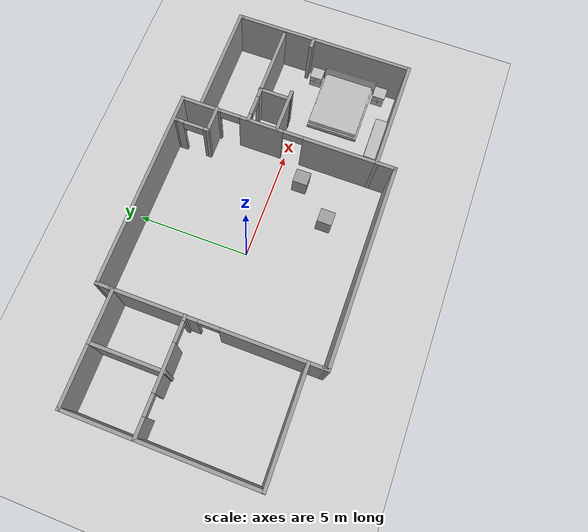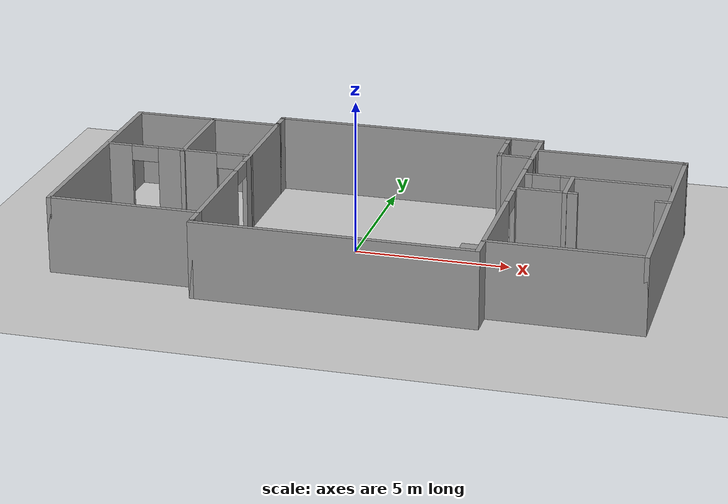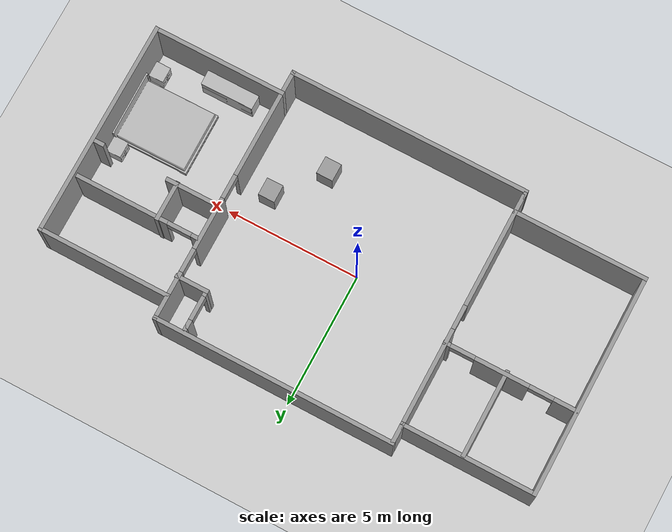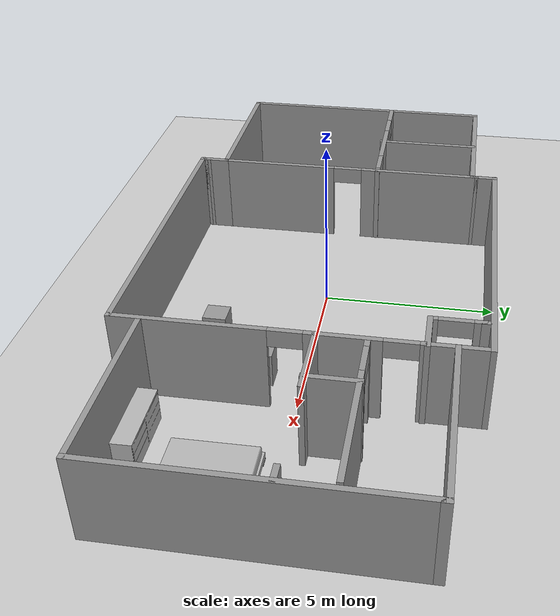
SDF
<sdf version="1.6">
 <world name="default">
  <model name="ground_plane">
   <static>1</static>
   <link name="link">
    <collision name="collision">
     <geometry><plane><normal>0 0 1</normal><size>100 100</size></plane></geometry>
     <surface><friction><ode><mu>100</mu><mu2>50</mu2></ode></friction></surface>
    </collision>
    <visual name="visual">
     <cast_shadows>0</cast_shadows>
     <geometry><plane><normal>0 0 1</normal><size>100 100</size></plane></geometry>
     <material>
      <script><uri>file://media/materials/scripts/gazebo.material</uri><name>Gazebo/Grey</name></script>
     </material>
    </visual>
   </link>
  </model>
  <model name="house1">
   <pose>0.56665 0.024859 0 0 -0 0</pose>
   <link name="Wall_10">
    <collision name="Wall_10_Collision">
     <geometry><box><size>8.25 0.15 2.5</size></box></geometry>
     <pose>0 0 1.25 0 -0 0</pose>
    </collision>
    <visual name="Wall_10_Visual">
     <pose>0 0 1.25 0 -0 0</pose>
     <geometry><box><size>8.25 0.15 2.5</size></box></geometry>
     <material>
      <script><uri>file://media/materials/scripts/gazebo.material</uri><name>Gazebo/Grey</name></script>
      <ambient>1 1 1 1</ambient>
     </material>
     <meta><layer>0</layer></meta>
    </visual>
    <pose>-9.275 0.05 0 0 0 -1.5708</pose>
   </link>
   <link name="Wall_11">
    <collision name="Wall_11_Collision">
     <geometry><box><size>5 0.15 2.5</size></box></geometry>
     <pose>0 0 1.25 0 -0 0</pose>
    </collision>
    <visual name="Wall_11_Visual">
     <pose>0 0 1.25 0 -0 0</pose>
     <geometry><box><size>5 0.15 2.5</size></box></geometry>
     <material>
      <script><uri>file://media/materials/scripts/gazebo.material</uri><name>Gazebo/Grey</name></script>
      <ambient>1 1 1 1</ambient>
     </material>
     <meta><layer>0</layer></meta>
    </visual>
    <pose>-6.85 -4 0 0 -0 0</pose>
   </link>
   <link name="Wall_12">
    <collision name="Wall_12_Collision">
     <geometry><box><size>0.75 0.15 2.5</size></box></geometry>
     <pose>0 0 1.25 0 -0 0</pose>
    </collision>
    <visual name="Wall_12_Visual">
     <pose>0 0 1.25 0 -0 0</pose>
     <geometry><box><size>0.75 0.15 2.5</size></box></geometry>
     <material>
      <script><uri>file://media/materials/scripts/gazebo.material</uri><name>Gazebo/Grey</name></script>
      <ambient>1 1 1 1</ambient>
     </material>
     <meta><layer>0</layer></meta>
    </visual>
    <pose>-4.425 -4.3 0 0 0 -1.5708</pose>
   </link>
   <link name="Wall_13">
    <collision name="Wall_13_Collision">
     <geometry><box><size>0.25 0.15 2.5</size></box></geometry>
     <pose>0 0 1.25 0 -0 0</pose>
    </collision>
    <visual name="Wall_13_Visual">
     <pose>0 0 1.25 0 -0 0</pose>
     <geometry><box><size>0.25 0.15 2.5</size></box></geometry>
     <material>
      <script><uri>file://media/materials/scripts/gazebo.material</uri><name>Gazebo/Grey</name></script>
      <ambient>1 1 1 1</ambient>
     </material>
     <meta><layer>0</layer></meta>
    </visual>
    <pose>-4.425 -4.65 0 0 0 -1.5708</pose>
   </link>
   <link name="Wall_14">
    <collision name="Wall_14_Collision">
     <geometry><box><size>0.25 0.15 2.5</size></box></geometry>
     <pose>0 0 1.25 0 -0 0</pose>
    </collision>
    <visual name="Wall_14_Visual">
     <pose>0 0 1.25 0 -0 0</pose>
     <geometry><box><size>0.25 0.15 2.5</size></box></geometry>
     <material>
      <script><uri>file://media/materials/scripts/gazebo.material</uri><name>Gazebo/Grey</name></script>
      <ambient>1 1 1 1</ambient>
     </material>
     <meta><layer>0</layer></meta>
    </visual>
    <pose>-4.425 -4.75 0 0 0 -1.5708</pose>
   </link>
   <link name="Wall_15">
    <collision name="Wall_15_Collision">
     <geometry><box><size>9 0.15 2.5</size></box></geometry>
     <pose>0 0 1.25 0 -0 0</pose>
    </collision>
    <visual name="Wall_15_Visual">
     <pose>0 0 1.25 0 -0 0</pose>
     <geometry><box><size>9 0.15 2.5</size></box></geometry>
     <material>
      <script><uri>file://media/materials/scripts/gazebo.material</uri><name>Gazebo/Grey</name></script>
      <ambient>1 1 1 1</ambient>
     </material>
     <meta><layer>0</layer></meta>
    </visual>
    <pose>0 -4.8 0 0 -0 0</pose>
   </link>
   <link name="Wall_16">
    <pose>4.425 0 0 0 -0 1.5708</pose>
    <visual name="Wall_16_Visual_0">
     <pose>-2.80205 0 1.25 0 -0 0</pose>
     <geometry><box><size>4.14589 0.15 2.5</size></box></geometry>
     <material>
      <script><uri>file://media/materials/scripts/gazebo.material</uri><name>Gazebo/Grey</name></script>
      <ambient>1 1 1 1</ambient>
     </material>
     <meta><layer>0</layer></meta>
    </visual>
    <collision name="Wall_16_Collision_0">
     <geometry><box><size>4.14589 0.15 2.5</size></box></geometry>
     <pose>-2.80205 0 1.25 0 -0 0</pose>
    </collision>
    <visual name="Wall_16_Visual_1">
     <pose>1.15731 0 1.25 0 -0 0</pose>
     <geometry><box><size>1.97282 0.15 2.5</size></box></geometry>
     <material>
      <script><uri>file://media/materials/scripts/gazebo.material</uri><name>Gazebo/Grey</name></script>
      <ambient>1 1 1 1</ambient>
     </material>
     <meta><layer>0</layer></meta>
    </visual>
    <collision name="Wall_16_Collision_1">
     <geometry><box><size>1.97282 0.15 2.5</size></box></geometry>
     <pose>1.15731 0 1.25 0 -0 0</pose>
    </collision>
    <visual name="Wall_16_Visual_2">
     <pose>3.95936 0 1.25 0 -0 0</pose>
     <geometry><box><size>1.83128 0.15 2.5</size></box></geometry>
     <material>
      <script><uri>file://media/materials/scripts/gazebo.material</uri><name>Gazebo/Grey</name></script>
      <ambient>1 1 1 1</ambient>
     </material>
     <meta><layer>0</layer></meta>
    </visual>
    <collision name="Wall_16_Collision_2">
     <geometry><box><size>1.83128 0.15 2.5</size></box></geometry>
     <pose>3.95936 0 1.25 0 -0 0</pose>
    </collision>
    <visual name="Wall_16_Visual_3">
     <pose>-0.279106 0 2.25 0 -0 0</pose>
     <geometry><box><size>0.9 0.15 0.5</size></box></geometry>
     <material>
      <script><uri>file://media/materials/scripts/gazebo.material</uri><name>Gazebo/Grey</name></script>
      <ambient>1 1 1 1</ambient>
     </material>
     <meta><layer>0</layer></meta>
    </visual>
    <collision name="Wall_16_Collision_3">
     <geometry><box><size>0.9 0.15 0.5</size></box></geometry>
     <pose>-0.279106 0 2.25 0 -0 0</pose>
    </collision>
    <visual name="Wall_16_Visual_4">
     <pose>2.59372 0 2.25 0 -0 0</pose>
     <geometry><box><size>0.9 0.15 0.5</size></box></geometry>
     <material>
      <script><uri>file://media/materials/scripts/gazebo.material</uri><name>Gazebo/Grey</name></script>
      <ambient>1 1 1 1</ambient>
     </material>
     <meta><layer>0</layer></meta>
    </visual>
    <collision name="Wall_16_Collision_4">
     <geometry><box><size>0.9 0.15 0.5</size></box></geometry>
     <pose>2.59372 0 2.25 0 -0 0</pose>
    </collision>
   </link>
   <link name="Wall_18">
    <collision name="Wall_18_Collision">
     <geometry><box><size>2 0.15 2.5</size></box></geometry>
     <pose>0 0 1.25 0 -0 0</pose>
    </collision>
    <visual name="Wall_18_Visual">
     <pose>0 0 1.25 0 -0 0</pose>
     <geometry><box><size>2 0.15 2.5</size></box></geometry>
     <material>
      <script><uri>file://media/materials/scripts/gazebo.material</uri><name>Gazebo/Grey</name></script>
      <ambient>1 1 1 1</ambient>
     </material>
     <meta><layer>0</layer></meta>
    </visual>
    <pose>5.42036 0.473012 0 0 -0 0</pose>
   </link>
   <link name="Wall_20">
    <collision name="Wall_20_Collision">
     <geometry><box><size>5 0.15 2.5</size></box></geometry>
     <pose>0 0 1.25 0 -0 0</pose>
    </collision>
    <visual name="Wall_20_Visual">
     <pose>0 0 1.25 0 -0 0</pose>
     <geometry><box><size>5 0.15 2.5</size></box></geometry>
     <material>
      <script><uri>file://media/materials/scripts/gazebo.material</uri><name>Gazebo/Grey</name></script>
      <ambient>1 1 1 1</ambient>
     </material>
     <meta><layer>0</layer></meta>
    </visual>
    <pose>6.85 -3.99469 0 0 -0 0</pose>
   </link>
   <link name="Wall_21">
    <collision name="Wall_21_Collision">
     <geometry><box><size>8 0.15 2.5</size></box></geometry>
     <pose>0 0 1.25 0 -0 0</pose>
    </collision>
    <visual name="Wall_21_Visual">
     <pose>0 0 1.25 0 -0 0</pose>
     <geometry><box><size>8 0.15 2.5</size></box></geometry>
     <material>
      <script><uri>file://media/materials/scripts/gazebo.material</uri><name>Gazebo/Grey</name></script>
      <ambient>1 1 1 1</ambient>
     </material>
     <meta><layer>0</layer></meta>
    </visual>
    <pose>9.275 -0.069691 0 0 -0 1.5708</pose>
   </link>
   <link name="Wall_22">
    <collision name="Wall_22_Collision">
     <geometry><box><size>0.25 0.15 2.5</size></box></geometry>
     <pose>0 0 1.25 0 -0 0</pose>
    </collision>
    <visual name="Wall_22_Visual">
     <pose>0 0 1.25 0 -0 0</pose>
     <geometry><box><size>0.25 0.15 2.5</size></box></geometry>
     <material>
      <script><uri>file://media/materials/scripts/gazebo.material</uri><name>Gazebo/Grey</name></script>
      <ambient>1 1 1 1</ambient>
     </material>
     <meta><layer>0</layer></meta>
    </visual>
    <pose>9.275 3.90531 0 0 -0 1.5708</pose>
   </link>
   <link name="Wall_23">
    <collision name="Wall_23_Collision">
     <geometry><box><size>5 0.15 2.5</size></box></geometry>
     <pose>0 0 1.25 0 -0 0</pose>
    </collision>
    <visual name="Wall_23_Visual">
     <pose>0 0 1.25 0 -0 0</pose>
     <geometry><box><size>5 0.15 2.5</size></box></geometry>
     <material>
      <script><uri>file://media/materials/scripts/gazebo.material</uri><name>Gazebo/Grey</name></script>
      <ambient>1 1 1 1</ambient>
     </material>
     <meta><layer>0</layer></meta>
    </visual>
    <pose>6.85 3.95531 0 0 -0 3.14159</pose>
   </link>
   <link name="Wall_25">
    <collision name="Wall_25_Collision">
     <geometry><box><size>1.25 0.15 2.5</size></box></geometry>
     <pose>0 0 1.25 0 -0 0</pose>
    </collision>
    <visual name="Wall_25_Visual">
     <pose>0 0 1.25 0 -0 0</pose>
     <geometry><box><size>1.25 0.15 2.5</size></box></geometry>
     <material>
      <script><uri>file://media/materials/scripts/gazebo.material</uri><name>Gazebo/Grey</name></script>
      <ambient>1 1 1 1</ambient>
     </material>
     <meta><layer>0</layer></meta>
    </visual>
    <pose>3.91018 3.21696 0 0 -0 3.14159</pose>
   </link>
   <link name="Wall_26">
    <pose>3.36018 3.89196 0 0 -0 1.5708</pose>
    <visual name="Wall_26_Visual_0">
     <pose>-0.614115 0 1.25 0 -0 0</pose>
     <geometry><box><size>0.271769 0.15 2.5</size></box></geometry>
     <material>
      <script><uri>file://media/materials/scripts/gazebo.material</uri><name>Gazebo/Grey</name></script>
      <ambient>1 1 1 1</ambient>
     </material>
     <meta><layer>0</layer></meta>
    </visual>
    <collision name="Wall_26_Collision_0">
     <geometry><box><size>0.271769 0.15 2.5</size></box></geometry>
     <pose>-0.614115 0 1.25 0 -0 0</pose>
    </collision>
    <visual name="Wall_26_Visual_1">
     <pose>0.585885 0 1.25 0 -0 0</pose>
     <geometry><box><size>0.328231 0.15 2.5</size></box></geometry>
     <material>
      <script><uri>file://media/materials/scripts/gazebo.material</uri><name>Gazebo/Grey</name></script>
      <ambient>1 1 1 1</ambient>
     </material>
     <meta><layer>0</layer></meta>
    </visual>
    <collision name="Wall_26_Collision_1">
     <geometry><box><size>0.328231 0.15 2.5</size></box></geometry>
     <pose>0.585885 0 1.25 0 -0 0</pose>
    </collision>
    <visual name="Wall_26_Visual_2">
     <pose>-0.028231 0 2.25 0 -0 0</pose>
     <geometry><box><size>0.9 0.15 0.5</size></box></geometry>
     <material>
      <script><uri>file://media/materials/scripts/gazebo.material</uri><name>Gazebo/Grey</name></script>
      <ambient>1 1 1 1</ambient>
     </material>
     <meta><layer>0</layer></meta>
    </visual>
    <collision name="Wall_26_Collision_2">
     <geometry><box><size>0.9 0.15 0.5</size></box></geometry>
     <pose>-0.028231 0 2.25 0 -0 0</pose>
    </collision>
   </link>
   <link name="Wall_27">
    <collision name="Wall_27_Collision">
     <geometry><box><size>0.25 0.15 2.5</size></box></geometry>
     <pose>0 0 1.25 0 -0 0</pose>
    </collision>
    <visual name="Wall_27_Visual">
     <pose>0 0 1.25 0 -0 0</pose>
     <geometry><box><size>0.25 0.15 2.5</size></box></geometry>
     <material>
      <script><uri>file://media/materials/scripts/gazebo.material</uri><name>Gazebo/Grey</name></script>
      <ambient>1 1 1 1</ambient>
     </material>
     <meta><layer>0</layer></meta>
    </visual>
    <pose>3.36018 4.61696 0 0 -0 1.5708</pose>
   </link>
   <link name="Wall_29">
    <pose>-4.425 0.05 0 0 0 -1.5708</pose>
    <visual name="Wall_29_Visual_0">
     <pose>-2.29321 0 1.25 0 -0 0</pose>
     <geometry><box><size>3.66357 0.15 2.5</size></box></geometry>
     <material>
      <script><uri>file://media/materials/scripts/gazebo.material</uri><name>Gazebo/Grey</name></script>
      <ambient>1 1 1 1</ambient>
     </material>
     <meta><layer>0</layer></meta>
    </visual>
    <collision name="Wall_29_Collision_0">
     <geometry><box><size>3.66357 0.15 2.5</size></box></geometry>
     <pose>-2.29321 0 1.25 0 -0 0</pose>
    </collision>
    <visual name="Wall_29_Visual_1">
     <pose>2.28179 0 1.25 0 -0 0</pose>
     <geometry><box><size>3.68643 0.15 2.5</size></box></geometry>
     <material>
      <script><uri>file://media/materials/scripts/gazebo.material</uri><name>Gazebo/Grey</name></script>
      <ambient>1 1 1 1</ambient>
     </material>
     <meta><layer>0</layer></meta>
    </visual>
    <collision name="Wall_29_Collision_1">
     <geometry><box><size>3.68643 0.15 2.5</size></box></geometry>
     <pose>2.28179 0 1.25 0 -0 0</pose>
    </collision>
    <visual name="Wall_29_Visual_2">
     <pose>-0.011427 0 2.25 0 -0 0</pose>
     <geometry><box><size>0.9 0.15 0.5</size></box></geometry>
     <material>
      <script><uri>file://media/materials/scripts/gazebo.material</uri><name>Gazebo/Grey</name></script>
      <ambient>1 1 1 1</ambient>
     </material>
     <meta><layer>0</layer></meta>
    </visual>
    <collision name="Wall_29_Collision_2">
     <geometry><box><size>0.9 0.15 0.5</size></box></geometry>
     <pose>-0.011427 0 2.25 0 -0 0</pose>
    </collision>
   </link>
   <link name="Wall_3">
    <collision name="Wall_3_Collision">
     <geometry><box><size>9 0.15 2.5</size></box></geometry>
     <pose>0 0 1.25 0 -0 0</pose>
    </collision>
    <visual name="Wall_3_Visual">
     <pose>0 0 1.25 0 -0 0</pose>
     <geometry><box><size>9 0.15 2.5</size></box></geometry>
     <material>
      <script><uri>file://media/materials/scripts/gazebo.material</uri><name>Gazebo/Grey</name></script>
      <ambient>1 1 1 1</ambient>
     </material>
     <meta><layer>0</layer></meta>
    </visual>
    <pose>0 4.8 0 0 -0 3.14159</pose>
   </link>
   <link name="Wall_31">
    <pose>-6.83454 1.03587 0 0 -0 0</pose>
    <visual name="Wall_31_Visual_0">
     <pose>-2.03932 0 1.25 0 -0 0</pose>
     <geometry><box><size>0.921362 0.15 2.5</size></box></geometry>
     <material>
      <script><uri>file://media/materials/scripts/gazebo.material</uri><name>Gazebo/Grey</name></script>
      <ambient>1 1 1 1</ambient>
     </material>
     <meta><layer>0</layer></meta>
    </visual>
    <collision name="Wall_31_Collision_0">
     <geometry><box><size>0.921362 0.15 2.5</size></box></geometry>
     <pose>-2.03932 0 1.25 0 -0 0</pose>
    </collision>
    <visual name="Wall_31_Visual_1">
     <pose>0.323037 0 1.25 0 -0 0</pose>
     <geometry><box><size>2.00335 0.15 2.5</size></box></geometry>
     <material>
      <script><uri>file://media/materials/scripts/gazebo.material</uri><name>Gazebo/Grey</name></script>
      <ambient>1 1 1 1</ambient>
     </material>
     <meta><layer>0</layer></meta>
    </visual>
    <collision name="Wall_31_Collision_1">
     <geometry><box><size>2.00335 0.15 2.5</size></box></geometry>
     <pose>0.323037 0 1.25 0 -0 0</pose>
    </collision>
    <visual name="Wall_31_Visual_2">
     <pose>2.36236 0 1.25 0 -0 0</pose>
     <geometry><box><size>0.275288 0.15 2.5</size></box></geometry>
     <material>
      <script><uri>file://media/materials/scripts/gazebo.material</uri><name>Gazebo/Grey</name></script>
      <ambient>1 1 1 1</ambient>
     </material>
     <meta><layer>0</layer></meta>
    </visual>
    <collision name="Wall_31_Collision_2">
     <geometry><box><size>0.275288 0.15 2.5</size></box></geometry>
     <pose>2.36236 0 1.25 0 -0 0</pose>
    </collision>
    <visual name="Wall_31_Visual_3">
     <pose>-1.12864 0 2.25 0 -0 0</pose>
     <geometry><box><size>0.9 0.15 0.5</size></box></geometry>
     <material>
      <script><uri>file://media/materials/scripts/gazebo.material</uri><name>Gazebo/Grey</name></script>
      <ambient>1 1 1 1</ambient>
     </material>
     <meta><layer>0</layer></meta>
    </visual>
    <collision name="Wall_31_Collision_3">
     <geometry><box><size>0.9 0.15 0.5</size></box></geometry>
     <pose>-1.12864 0 2.25 0 -0 0</pose>
    </collision>
    <visual name="Wall_31_Visual_4">
     <pose>1.77471 0 2.25 0 -0 0</pose>
     <geometry><box><size>0.9 0.15 0.5</size></box></geometry>
     <material>
      <script><uri>file://media/materials/scripts/gazebo.material</uri><name>Gazebo/Grey</name></script>
      <ambient>1 1 1 1</ambient>
     </material>
     <meta><layer>0</layer></meta>
    </visual>
    <collision name="Wall_31_Collision_4">
     <geometry><box><size>0.9 0.15 0.5</size></box></geometry>
     <pose>1.77471 0 2.25 0 -0 0</pose>
    </collision>
   </link>
   <link name="Wall_35">
    <collision name="Wall_35_Collision">
     <geometry><box><size>3.25 0.15 2.5</size></box></geometry>
     <pose>0 0 1.25 0 -0 0</pose>
    </collision>
    <visual name="Wall_35_Visual">
     <pose>0 0 1.25 0 -0 0</pose>
     <geometry><box><size>3.25 0.15 2.5</size></box></geometry>
     <material>
      <script><uri>file://media/materials/scripts/gazebo.material</uri><name>Gazebo/Grey</name></script>
      <ambient>1 1 1 1</ambient>
     </material>
     <meta><layer>0</layer></meta>
    </visual>
    <pose>-6.65631 2.51552 0 0 -0 1.5708</pose>
   </link>
   <link name="Wall_38">
    <collision name="Wall_38_Collision">
     <geometry><box><size>0.5 0.15 2.5</size></box></geometry>
     <pose>0 0 1.25 0 -0 0</pose>
    </collision>
    <visual name="Wall_38_Visual">
     <pose>0 0 1.25 0 -0 0</pose>
     <geometry><box><size>0.5 0.15 2.5</size></box></geometry>
     <material>
      <script><uri>file://media/materials/scripts/gazebo.material</uri><name>Gazebo/Grey</name></script>
      <ambient>1 1 1 1</ambient>
     </material>
     <meta><layer>0</layer></meta>
    </visual>
    <pose>9.06949 0.437834 0 0 -0 3.14159</pose>
   </link>
   <link name="Wall_40">
    <pose>6.76018 1.77463 0 0 -0 0</pose>
    <visual name="Wall_40_Visual_0">
     <pose>-2.19974 0 1.25 0 -0 0</pose>
     <geometry><box><size>0.350521 0.15 2.5</size></box></geometry>
     <material>
      <script><uri>file://media/materials/scripts/gazebo.material</uri><name>Gazebo/Grey</name></script>
      <ambient>1 1 1 1</ambient>
     </material>
     <meta><layer>0</layer></meta>
    </visual>
    <collision name="Wall_40_Collision_0">
     <geometry><box><size>0.350521 0.15 2.5</size></box></geometry>
     <pose>-2.19974 0 1.25 0 -0 0</pose>
    </collision>
    <visual name="Wall_40_Visual_1">
     <pose>0.625261 0 1.25 0 -0 0</pose>
     <geometry><box><size>3.49948 0.15 2.5</size></box></geometry>
     <material>
      <script><uri>file://media/materials/scripts/gazebo.material</uri><name>Gazebo/Grey</name></script>
      <ambient>1 1 1 1</ambient>
     </material>
     <meta><layer>0</layer></meta>
    </visual>
    <collision name="Wall_40_Collision_1">
     <geometry><box><size>3.49948 0.15 2.5</size></box></geometry>
     <pose>0.625261 0 1.25 0 -0 0</pose>
    </collision>
    <visual name="Wall_40_Visual_2">
     <pose>-1.57448 0 2.25 0 -0 0</pose>
     <geometry><box><size>0.9 0.15 0.5</size></box></geometry>
     <material>
      <script><uri>file://media/materials/scripts/gazebo.material</uri><name>Gazebo/Grey</name></script>
      <ambient>1 1 1 1</ambient>
     </material>
     <meta><layer>0</layer></meta>
    </visual>
    <collision name="Wall_40_Collision_2">
     <geometry><box><size>0.9 0.15 0.5</size></box></geometry>
     <pose>-1.57448 0 2.25 0 -0 0</pose>
    </collision>
   </link>
   <link name="Wall_50">
    <collision name="Wall_50_Collision">
     <geometry><box><size>1.5 0.15 2.5</size></box></geometry>
     <pose>0 0 1.25 0 -0 0</pose>
    </collision>
    <visual name="Wall_50_Visual">
     <pose>0 0 1.25 0 -0 0</pose>
     <geometry><box><size>1.5 0.15 2.5</size></box></geometry>
     <material>
      <script><uri>file://media/materials/scripts/gazebo.material</uri><name>Gazebo/Grey</name></script>
      <ambient>1 1 1 1</ambient>
     </material>
     <meta><layer>0</layer></meta>
    </visual>
    <pose>6.01545 1.12702 0 0 -0 1.5708</pose>
   </link>
   <link name="Wall_6">
    <collision name="Wall_6_Collision">
     <geometry><box><size>0.75 0.15 2.5</size></box></geometry>
     <pose>0 0 1.25 0 -0 0</pose>
    </collision>
    <visual name="Wall_6_Visual">
     <pose>0 0 1.25 0 -0 0</pose>
     <geometry><box><size>0.75 0.15 2.5</size></box></geometry>
     <material>
      <script><uri>file://media/materials/scripts/gazebo.material</uri><name>Gazebo/Grey</name></script>
      <ambient>1 1 1 1</ambient>
     </material>
     <meta><layer>0</layer></meta>
    </visual>
    <pose>-4.425 4.5 0 0 0 -1.5708</pose>
   </link>
   <link name="Wall_7">
    <collision name="Wall_7_Collision">
     <geometry><box><size>0.15 0.15 2.5</size></box></geometry>
     <pose>0 0 1.25 0 -0 0</pose>
    </collision>
    <visual name="Wall_7_Visual">
     <pose>0 0 1.25 0 -0 0</pose>
     <geometry><box><size>0.15 0.15 2.5</size></box></geometry>
     <material>
      <script><uri>file://media/materials/scripts/gazebo.material</uri><name>Gazebo/Grey</name></script>
      <ambient>1 1 1 1</ambient>
     </material>
     <meta><layer>0</layer></meta>
    </visual>
    <pose>-4.425 4.2 0 0 -0 0</pose>
   </link>
   <link name="Wall_8">
    <collision name="Wall_8_Collision">
     <geometry><box><size>0.25 0.15 2.5</size></box></geometry>
     <pose>0 0 1.25 0 -0 0</pose>
    </collision>
    <visual name="Wall_8_Visual">
     <pose>0 0 1.25 0 -0 0</pose>
     <geometry><box><size>0.25 0.15 2.5</size></box></geometry>
     <material>
      <script><uri>file://media/materials/scripts/gazebo.material</uri><name>Gazebo/Grey</name></script>
      <ambient>1 1 1 1</ambient>
     </material>
     <meta><layer>0</layer></meta>
    </visual>
    <pose>-4.425 4.15 0 0 0 -1.5708</pose>
   </link>
   <link name="Wall_9">
    <collision name="Wall_9_Collision">
     <geometry><box><size>5 0.15 2.5</size></box></geometry>
     <pose>0 0 1.25 0 -0 0</pose>
    </collision>
    <visual name="Wall_9_Visual">
     <pose>0 0 1.25 0 -0 0</pose>
     <geometry><box><size>5 0.15 2.5</size></box></geometry>
     <material>
      <script><uri>file://media/materials/scripts/gazebo.material</uri><name>Gazebo/Grey</name></script>
      <ambient>1 1 1 1</ambient>
     </material>
     <meta><layer>0</layer></meta>
    </visual>
    <pose>-6.85 4.1 0 0 -0 3.14159</pose>
   </link>
   <static>1</static>
  </model>
  <model name="bedroom2">
   <static>1</static>
   <link name="body">
    <visual name="visual">
     <geometry><mesh><uri>model://blueprint_exploration/worlds/models/bedroom2.dae</uri></mesh></geometry>
    </visual>
    <collision name="collision">
     <geometry><mesh><uri>model://blueprint_exploration/worlds/models/bedroom2.dae</uri></mesh></geometry>
    </collision>
   </link>
   <pose>7.07962 -0.89265 0 0 0 -1.5634</pose>
  </model>
  <model name="unit_box">
   <pose>2.53517 -2.73111 0.499996 -7e-06 -6e-06 -0.006789</pose>
   <link name="link">
    <inertial>
     <mass>1</mass>
     <inertia>
      <ixx>0.166667</ixx>
      <ixy>0</ixy>
      <ixz>0</ixz>
      <iyy>0.166667</iyy>
      <iyz>0</iyz>
      <izz>0.166667</izz>
     </inertia>
    </inertial>
    <collision name="collision"><geometry><box><size>0.620516 0.661252 1</size></box></geometry></collision>
    <visual name="visual">
     <geometry><box><size>0.620516 0.661252 1</size></box></geometry>
     <material>
      <script><name>Gazebo/Grey</name><uri>file://media/materials/scripts/gazebo.material</uri></script>
     </material>
    </visual>
   </link>
  </model>
  <model name="unit_box_clone">
   <pose>3.93608 -1.13208 0.499996 -7e-06 6e-06 0.006485</pose>
   <link name="link">
    <inertial>
     <mass>1</mass>
     <inertia>
      <ixx>0.166667</ixx>
      <ixy>0</ixy>
      <ixz>0</ixz>
      <iyy>0.166667</iyy>
      <iyz>0</iyz>
      <izz>0.166667</izz>
     </inertia>
    </inertial>
    <collision name="collision"><geometry><box><size>0.620516 0.661252 1</size></box></geometry></collision>
    <visual name="visual">
     <geometry><box><size>0.620516 0.661252 1</size></box></geometry>
     <material>
      <script><name>Gazebo/Grey</name><uri>file://media/materials/scripts/gazebo.material</uri></script>
     </material>
    </visual>
   </link>
  </model>
 </world>
</sdf>
